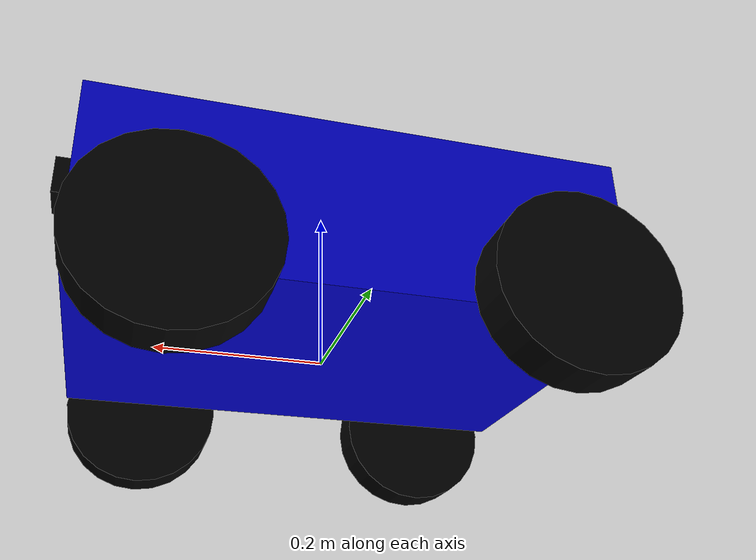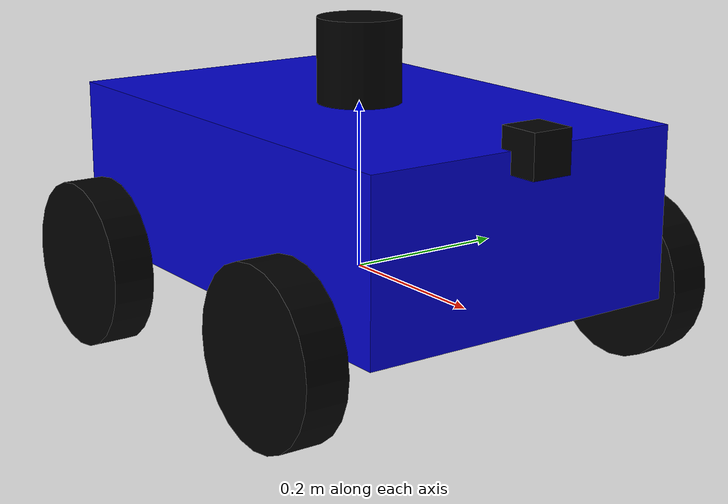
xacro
<?xml version="1.0"?>
<robot name="agribot" xmlns:xacro="http://www.ros.org/wiki/xacro">

  <material name="blue"><color rgba="0 0 0.8 1"/></material>
  <material name="black"><color rgba="0 0 0 1"/></material>
  <link name="base_footprint"/>

<joint name="base_footprint_joint" type="fixed">
  <parent link="base_footprint"/>
  <child link="base_link"/>
  <origin xyz="0 0 0.1" rpy="0 0 0"/> </joint>

  <link name="base_link">
    <visual>
      <geometry><box size="0.6 0.4 0.2"/></geometry>
      <material name="blue"/>
    </visual>
    <collision>
      <geometry><box size="0.6 0.4 0.2"/></geometry>
    </collision>
    <inertial>
      <mass value="5.0"/>
      <origin xyz="0 0 0" rpy="0 0 0"/>
      <inertia ixx="0.1" ixy="0" ixz="0" iyy="0.1" iyz="0" izz="0.1"/>
    </inertial>
  </link>

  <xacro:macro name="wheel" params="prefix x y">
    <link name="${prefix}_wheel">
      <visual>
        <geometry><cylinder radius="0.1" length="0.05"/></geometry>
        <material name="black"/>
      </visual>
      <collision>
        <geometry><cylinder radius="0.1" length="0.05"/></geometry>
      </collision>
      <inertial>
        <mass value="0.5"/>
        <inertia ixx="0.01" ixy="0" ixz="0" iyy="0.01" iyz="0" izz="0.01"/>
      </inertial>
    </link>
    <joint name="${prefix}_wheel_joint" type="continuous">
      <parent link="base_link"/>
      <child link="${prefix}_wheel"/>
      <origin xyz="${x} ${y} -0.1" rpy="-1.5708 0 0"/>
      <axis xyz="0 0 1"/>
    </joint>
  </xacro:macro>

  <xacro:wheel prefix="front_left" x="0.2" y="0.25"/>
  <xacro:wheel prefix="front_right" x="0.2" y="-0.25"/>
  <xacro:wheel prefix="back_left" x="-0.2" y="0.25"/>
  <xacro:wheel prefix="back_right" x="-0.2" y="-0.25"/>

  <link name="lidar_link">
    <visual><geometry><cylinder radius="0.05" length="0.1"/></geometry><material name="black"/></visual>
  </link>
  <joint name="lidar_joint" type="fixed">
    <parent link="base_link"/><child link="lidar_link"/><origin xyz="0 0 0.15"/>
  </joint>

  <!-- Replace the old gpu_lidar block with this gpu_ray/ray sensor -->
  <gazebo reference="lidar_link">
    <sensor name="lidar" type="gpu_ray">
      <update_rate>20</update_rate>
      <topic>scan</topic>
      <!-- optional: set the frame id that will be used on the published message -->
      <gz_frame_id>lidar_link</gz_frame_id>

      <ray>
        <scan>
          <horizontal>
            <!-- samples should match desired angular resolution (e.g. 360 or 640) -->
            <samples>640</samples>
            <resolution>1</resolution>
            <min_angle>-3.14159</min_angle>
            <max_angle>3.14159</max_angle>
          </horizontal>
        </scan>
        <range>
          <min>0.1</min>
          <max>10.0</max>
        </range>
      </ray>
    </sensor>
  </gazebo>

  <link name="camera_link">
    <visual><geometry><box size="0.05 0.05 0.05"/></geometry><material name="black"/></visual>
  </link>
  <joint name="camera_joint" type="fixed">
    <parent link="base_link"/><child link="camera_link"/><origin xyz="0.31 0 0.1"/>
  </joint>

  <gazebo reference="camera_link">
    <sensor name="camera" type="camera">
      <pose>0 0 0 0 0 0</pose>
      <visualize>true</visualize>
      <update_rate>20</update_rate>
      <topic>camera</topic>
      <gz_frame_id>camera_link</gz_frame_id>
      <camera>
        <horizontal_fov>1.089</horizontal_fov>
        <image>
          <width>640</width>
          <height>480</height>
          <format>R8G8B8</format>
        </image>
        <clip><near>0.05</near><far>100</far></clip>
      </camera>
    </sensor>
  </gazebo>

  <gazebo>
    <plugin filename="gz-sim-diff-drive-system" name="gz::sim::systems::DiffDrive">
      <left_joint>front_left_wheel_joint</left_joint>
      <left_joint>back_left_wheel_joint</left_joint>
      <right_joint>front_right_wheel_joint</right_joint>
      <right_joint>back_right_wheel_joint</right_joint>
      <wheel_separation>0.5</wheel_separation>
      <wheel_radius>0.1</wheel_radius>
      <topic>/model/agribot/cmd_vel</topic>
      <odom_topic>/model/agribot/odometry</odom_topic>
      <tf_topic>/model/agribot/tf</tf_topic>
      <frame_id>odom</frame_id>
      <child_frame_id>base_footprint</child_frame_id>
      <publish_odom>true</publish_odom>
      <publish_odom_tf>true</publish_odom_tf>
      <publish_wheel_tf>true</publish_wheel_tf>
    </plugin>
    <plugin filename="gz-sim-joint-state-publisher-system" name="gz::sim::systems::JointStatePublisher">
    <topic>joint_states</topic>
    <joint_name>front_left_wheel_joint</joint_name>
    <joint_name>front_right_wheel_joint</joint_name>
    <joint_name>back_left_wheel_joint</joint_name>
    <joint_name>back_right_wheel_joint</joint_name>
  </plugin>
    <plugin filename="gz-sim-sensors-system" name="gz::sim::systems::Sensors">
      <render_engine>ogre2</render_engine>
    </plugin>
  </gazebo>
</robot>
